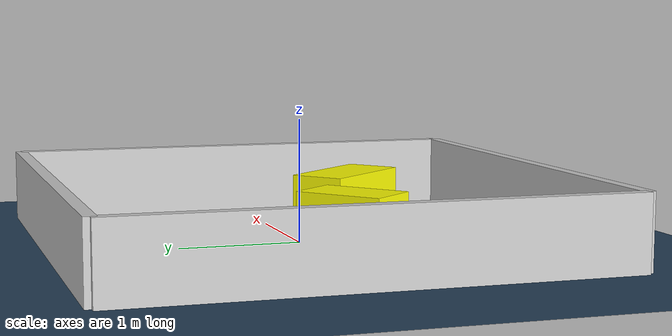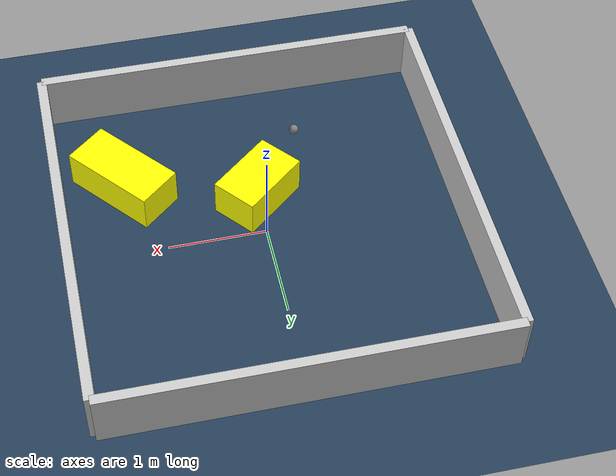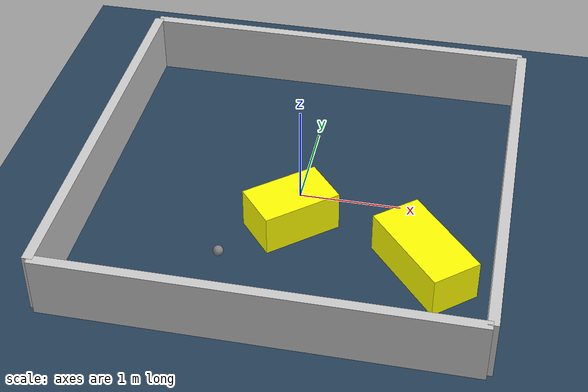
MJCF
<?xml version="1.0" ?>
<mujoco model="generated_environment">
  <option timestep="0.01" integrator="RK4" cone="elliptic"/>
  <default>
    <geom density="1"/>
  </default>
  <asset>
    <texture builtin="gradient" height="3072" rgb1="0.3 0.5 0.7" rgb2="0 0 0" type="skybox" width="512"/>
    <texture builtin="checker" height="300" mark="edge" markrgb="0.8 0.8 0.8" name="groundplane" rgb1="0.2 0.3 0.4" rgb2="0.1 0.2 0.3" type="2d" width="300"/>
    <material name="groundplane" reflectance="0.2" texrepeat="5 5" texture="groundplane" texuniform="true"/>
    <material name="robot" rgba="0.0 1.0 0.0 1"/>
  </asset>
  <worldbody>
    <light dir="0 0 -1" directional="true" pos="0 0 1.5"/>
    <geom condim="4" friction="1.0 0.005 0.001" material="groundplane" name="floor" size="0 0 0.05" type="plane"/>
    <body name="walls">
      <geom name="wall_1" condim="4" pos="-2.0 0.0 0.3" rgba="0.800000011920929 0.800000011920929 0.800000011920929 1.0" size="0.05 2.0 0.3" type="box"/>
      <geom name="wall_2" condim="4" pos="2.0 0.0 0.3" rgba="0.800000011920929 0.800000011920929 0.800000011920929 1.0" size="0.05 2.0 0.3" type="box"/>
      <geom name="wall_3" condim="4" pos="0.0 -2.0 0.3" rgba="0.800000011920929 0.800000011920929 0.800000011920929 1.0" size="2.0 0.05 0.3" type="box"/>
      <geom name="wall_4" condim="4" pos="0.0 2.0 0.3" rgba="0.800000011920929 0.800000011920929 0.800000011920929 1.0" size="2.0 0.05 0.3" type="box"/>
    </body>
    <body name="robot">
      <joint name="joint_x" type="slide" pos="0 0 0" axis="1 0 0"/>
      <joint name="joint_y" type="slide" pos="0 0 0" axis="0 1 0"/>
      <geom name="robot" type="sphere" pos="-0.535933751408286 -1.1524007876955236 0.2" size="0.05" mass="5." friction="1.0 0.005 0.0001" condim="4"/>
      <site name="sensor_ball"/>
    </body>
    <body name="obstacle_1_movable">
      <geom name="obstacle_1_movable" condim="4" pos="-4.639162721997714e-05 -0.4523829493563025 0.2" euler="0 0 310.0926878567059" friction="1.0 0.005 0.001" rgba="1 1 0 1" size="0.24295418587334075 0.3899850473702057 0.2" type="box" mass="0.1"/>
      <joint type="free"/>
    </body>
    <body name="obstacle_2_movable">
      <geom name="obstacle_2_movable" condim="4" pos="1.3240453481085388 -0.850193582304459 0.2" euler="0 0 40.43107828317227" friction="1.0 0.005 0.001" rgba="1 1 0 1" size="0.24478998569592625 0.5072944698404711 0.2" type="box" mass="0.1"/>
      <joint type="free"/>
    </body>
  </worldbody>
  <actuator>
    <motor name="actuator_x" joint="joint_x" gear="1" ctrlrange="-1 1"/>
    <motor name="actuator_y" joint="joint_y" gear="1" ctrlrange="-1 1"/>
  </actuator>
</mujoco>
